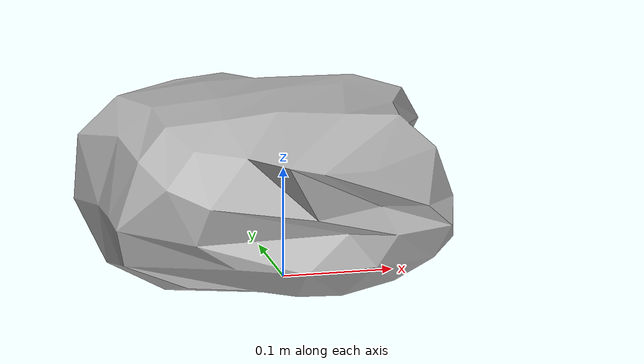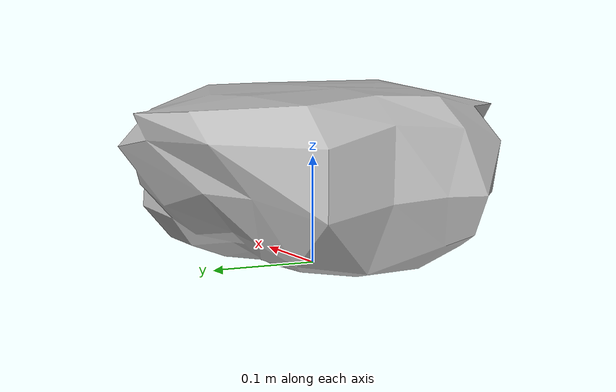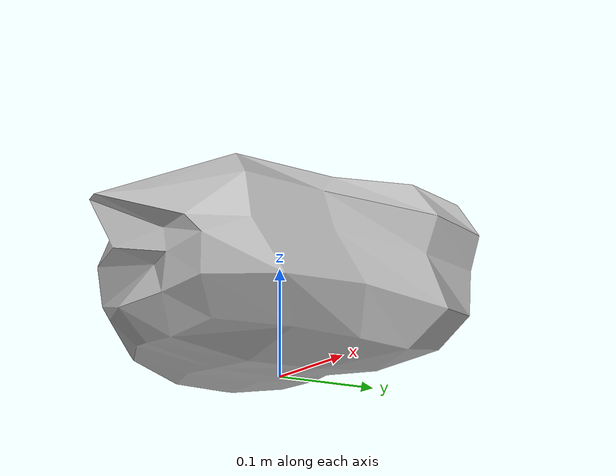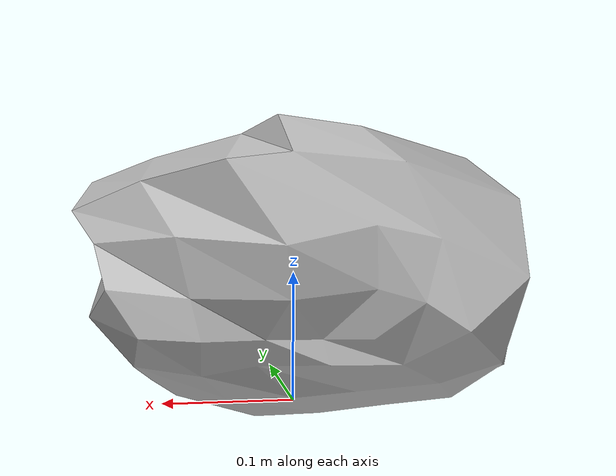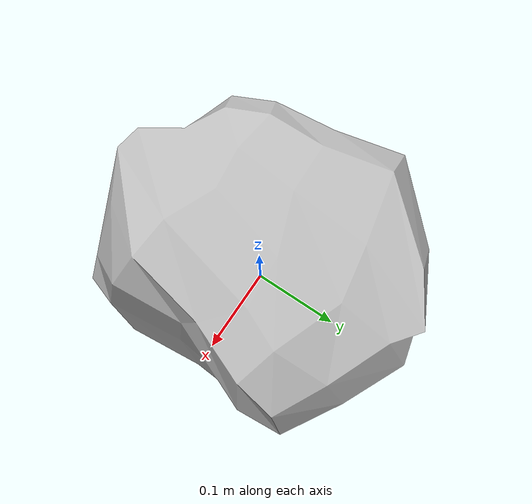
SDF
<?xml version="1.0" ?>
<sdf version="1.4">
  <model name="big_rock">
    <link name="link">
      <inertial>
        <mass>18.0</mass>
        <inertia>
          <ixx>1.80</ixx>
          <ixy>0.50</ixy>
          <ixz>0.50</ixz>
          <iyy>1.80</iyy>
          <iyz>0.50</iyz>
          <izz>1.80</izz>
        </inertia>
      </inertial>
      <pose>0 0 0.030903 1.5708 0 0</pose>
      <collision name="collision">
        <geometry>
          <mesh>
            <uri>model://hyq_big_rock/mesh/rock.dae</uri>
            <scale>0.10 0.10 0.10</scale>
          </mesh>
        </geometry>
        <surface>
          <bounce>
            <restitution_coefficient>0.01</restitution_coefficient>
            <threshold>5.0</threshold>
          </bounce>
          <friction>
            <ode>
              <mu>10</mu>
              <mu2>10</mu2>
            </ode>
          </friction>
          <contact>
            <ode>
              <soft_cfm>0.001</soft_cfm>
              <kp>100000.0</kp>
              <kd>1000.0</kd>
            </ode>
          </contact>
        </surface>
      </collision>
      <visual name="visual">
        <geometry>
          <mesh>
            <uri>model://hyq_big_rock/mesh/rock.dae</uri>
            <scale>0.10 0.10 0.10</scale>
          </mesh>
        </geometry>
      </visual>
    </link>
  </model>
</sdf>
